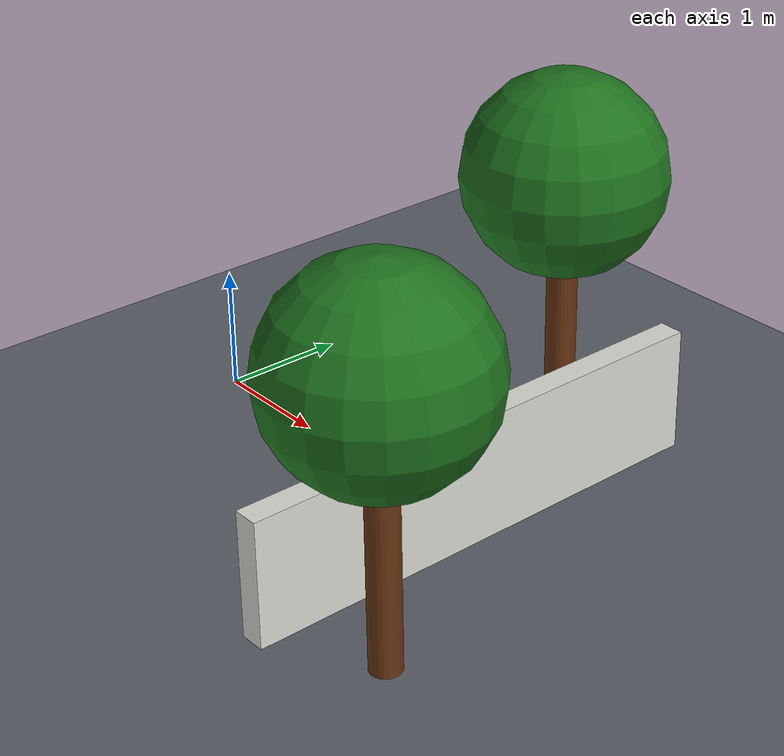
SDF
<?xml version="1.0" ?>

<sdf version="1.9">

    <world name="lidar_world">

        <!-- Physics -->

        <plugin
            filename="gz-sim-physics-system"
            name="gz::sim::systems::Physics">
        </plugin>

        <physics name="1ms" type="ode">
            <max_step_size>0.001</max_step_size>
            <real_time_factor>1.0</real_time_factor>
        </physics>

        <!-- Scene Broadcaster -->

        <plugin
            filename="gz-sim-scene-broadcaster-system"
            name="gz::sim::systems::SceneBroadcaster">
        </plugin>

        <!-- Sensors -->

        <plugin
            filename="gz-sim-sensors-system"
            name="gz::sim::systems::Sensors">
            <render_engine>ogre2</render_engine>
        </plugin>

        <!-- User Commands -->

        <plugin
            filename="gz-sim-user-commands-system"
            name="gz::sim::systems::UserCommands">
        </plugin>

        <!-- Ground -->

        <model name="ground">

            <static>true</static>

            <link name="ground_link">

                <collision name="collision">

                    <geometry>

                        <plane>
                            <normal>0 0 1</normal>
                            <size>100 100</size>
                        </plane>

                    </geometry>

                </collision>

                <visual name="visual">

                    <geometry>

                        <plane>
                            <normal>0 0 1</normal>
                            <size>100 100</size>
                        </plane>

                    </geometry>

                    <material>

                        <ambient>
                            0.25 0.27 0.30 1
                        </ambient>

                        <diffuse>
                            0.35 0.37 0.40 1
                        </diffuse>

                        <specular>
                            0.05 0.05 0.05 1
                        </specular>

                    </material>

                </visual>

            </link>

        </model>

        <!-- Wall -->

        <model name="wall">

            <static>true</static>

            <pose>
                3 0 0.5 0 0 0
            </pose>

            <link name="wall_link">

                <collision name="collision">

                    <geometry>

                        <box>
                            <size>0.2 4 1</size>
                        </box>

                    </geometry>

                </collision>

                <visual name="visual">

                    <geometry>

                        <box>
                            <size>0.2 4 1</size>
                        </box>

                    </geometry>

                    <material>

                        <ambient>
                            0.75 0.75 0.72 1
                        </ambient>

                        <diffuse>
                            0.85 0.85 0.82 1
                        </diffuse>

                        <specular>
                            0.1 0.1 0.1 1
                        </specular>

                    </material>

                </visual>

            </link>

        </model>

        <!-- Decorative Tree 1 -->
        <!-- Visual only - no collision -->

        <model name="tree_1">

            <static>true</static>

            <pose>
                2.3 1.5 0 0 0 0
            </pose>

            <link name="tree_link">

                <!-- Trunk -->

                <visual name="trunk">

                    <pose>
                        0 0 1 0 0 0
                    </pose>

                    <geometry>

                        <cylinder>
                            <radius>0.12</radius>
                            <length>2.0</length>
                        </cylinder>

                    </geometry>

                    <material>

                        <ambient>
                            0.25 0.12 0.04 1
                        </ambient>

                        <diffuse>
                            0.40 0.20 0.06 1
                        </diffuse>

                    </material>

                </visual>

                <!-- Leaves -->

                <visual name="leaves">

                    <pose>
                        0 0 2.2 0 0 0
                    </pose>

                    <geometry>

                        <sphere>
                            <radius>0.8</radius>
                        </sphere>

                    </geometry>

                    <material>

                        <ambient>
                            0.08 0.30 0.08 1
                        </ambient>

                        <diffuse>
                            0.12 0.45 0.12 1
                        </diffuse>

                    </material>

                </visual>

            </link>

        </model>

        <!-- Decorative Tree 2 -->
        <!-- Visual only - no collision -->

        <model name="tree_2">

            <static>true</static>

            <pose>
                3.8 -1.5 0 0 0 0
            </pose>

            <link name="tree_link">

                <!-- Trunk -->

                <visual name="trunk">

                    <pose>
                        0 0 1 0 0 0
                    </pose>

                    <geometry>

                        <cylinder>
                            <radius>0.12</radius>
                            <length>2.0</length>
                        </cylinder>

                    </geometry>

                    <material>

                        <ambient>
                            0.25 0.12 0.04 1
                        </ambient>

                        <diffuse>
                            0.40 0.20 0.06 1
                        </diffuse>

                    </material>

                </visual>

                <!-- Leaves -->

                <visual name="leaves">

                    <pose>
                        0 0 2.2 0 0 0
                    </pose>

                    <geometry>

                        <sphere>
                            <radius>0.8</radius>
                        </sphere>

                    </geometry>

                    <material>

                        <ambient>
                            0.08 0.30 0.08 1
                        </ambient>

                        <diffuse>
                            0.12 0.45 0.12 1
                        </diffuse>

                    </material>

                </visual>

            </link>

        </model>

        <!-- Directional Light -->

        <light type="directional" name="sun">

            <cast_shadows>true</cast_shadows>

            <pose>
                0 0 10 0 0 0
            </pose>

            <diffuse>
                1 1 1 1
            </diffuse>

            <specular>
                1 1 1 1
            </specular>

            <direction>
                0 5 -10
            </direction>

        </light>

    </world>

</sdf>
